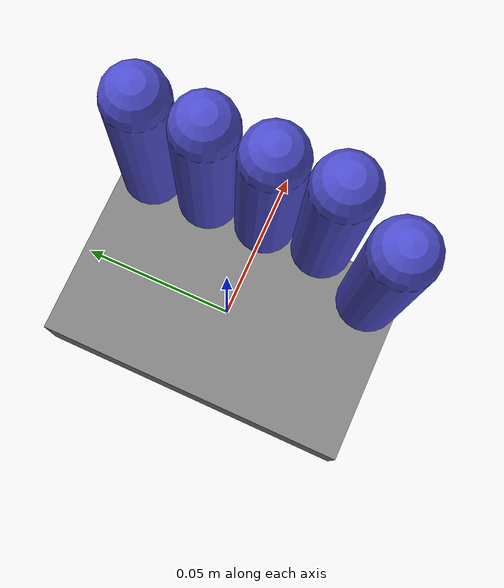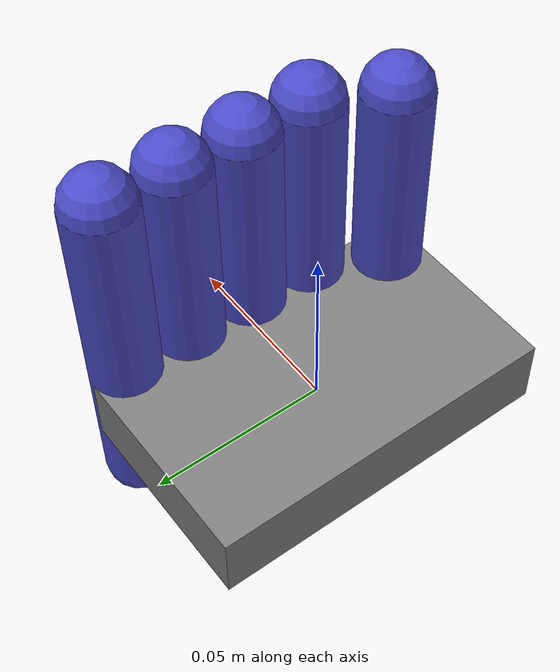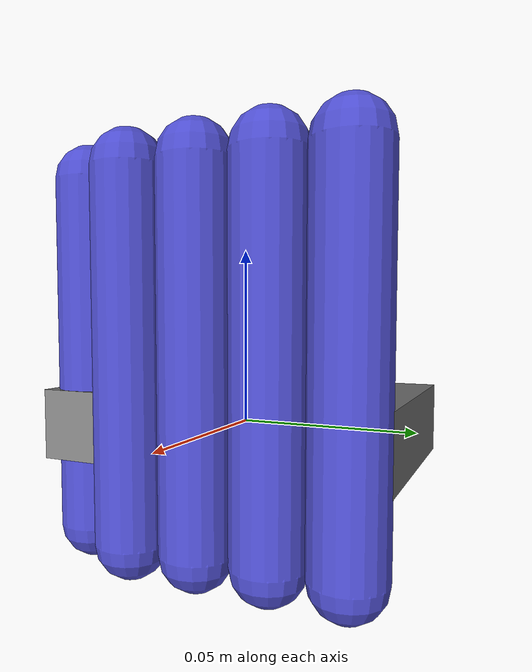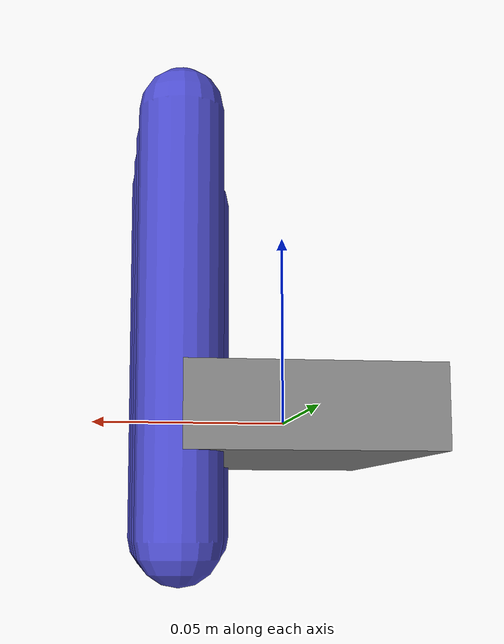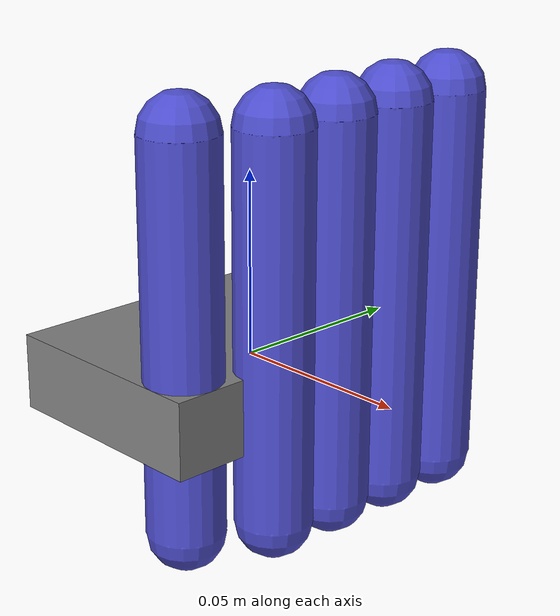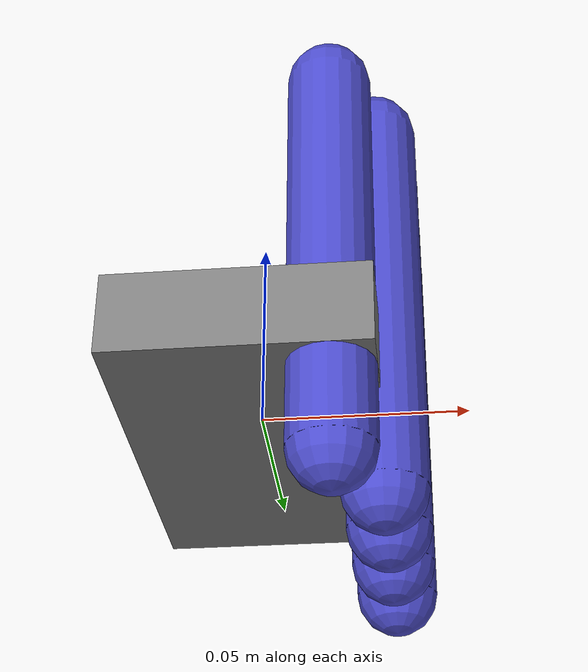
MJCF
<mujoco model="ShadowHand">
    <compiler angle="radian" coordinate="local" />

    <option timestep="0.01" gravity="0 0 -9.81" />

    <default>
        <joint limited="true" damping="1"/>
        <geom type="capsule" size="0.01 0.05" rgba="0.3 0.3 0.8 1"/>
    </default>

    <worldbody>
        <body name="hand_base" pos="0 0 0">
            <!-- Palm -->
            <geom type="box" size="0.03 0.05 0.01" rgba="0.5 0.5 0.5 1" />

            <!-- Five fingers -->
            <!-- Thumb -->
            <body name="thumb_base" pos="0.02 -0.04 0.02">
                <joint axis="0 1 0" name="thumb_joint1" range="-1 1" />
                <geom />
                <body>
                    <joint axis="0 1 0" name="thumb_joint2" range="-1 1" />
                    <geom />
                </body>
            </body>

            <!-- Index -->
            <body name="index_base" pos="0.03 -0.02 0.02">
                <joint axis="0 1 0" name="index_joint1" range="-1 1" />
                <geom />
                <body>
                    <joint axis="0 1 0" name="index_joint2" range="-1 1" />
                    <geom />
                </body>
            </body>

            <!-- Middle -->
            <body name="middle_base" pos="0.03 0.00 0.02">
                <joint axis="0 1 0" name="middle_joint1" range="-1 1" />
                <geom />
                <body>
                    <joint axis="0 1 0" name="middle_joint2" range="-1 1" />
                    <geom />
                </body>
            </body>

            <!-- Ring -->
            <body name="ring_base" pos="0.03 0.02 0.02">
                <joint axis="0 1 0" name="ring_joint1" range="-1 1" />
                <geom />
                <body>
                    <joint axis="0 1 0" name="ring_joint2" range="-1 1" />
                    <geom />
                </body>
            </body>

            <!-- Pinky -->
            <body name="pinky_base" pos="0.03 0.04 0.02">
                <joint axis="0 1 0" name="pinky_joint1" range="-1 1" />
                <geom />
                <body>
                    <joint axis="0 1 0" name="pinky_joint2" range="-1 1" />
                    <geom />
                </body>
            </body>
        </body>
    </worldbody>

    <actuator>
        <position joint="thumb_joint1" kp="10"/>
        <position joint="thumb_joint2" kp="10"/>
        <position joint="index_joint1" kp="10"/>
        <position joint="index_joint2" kp="10"/>
        <position joint="middle_joint1" kp="10"/>
        <position joint="middle_joint2" kp="10"/>
        <position joint="ring_joint1" kp="10"/>
        <position joint="ring_joint2" kp="10"/>
        <position joint="pinky_joint1" kp="10"/>
        <position joint="pinky_joint2" kp="10"/>
    </actuator>
</mujoco>
